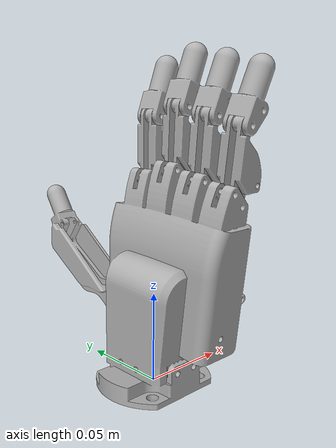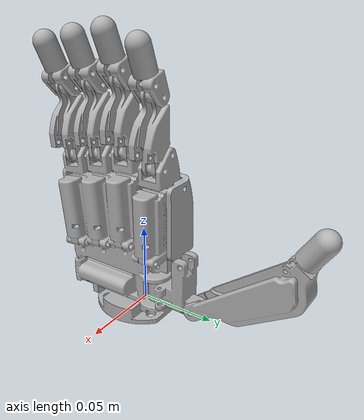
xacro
<?xml version="1.0" ?>
<robot name="cr_hand_urdf" xmlns:xacro="http://www.ros.org/wiki/xacro">

<xacro:include filename="$(find cr_hand_urdf)/urdf/materials.xacro" />
<xacro:include filename="$(find cr_hand_urdf)/urdf/sensors.xacro" />
<xacro:include filename="$(find cr_hand_urdf)/urdf/cr_hand_urdf.gazebo" />
<link name="base_link">
  <inertial>
    <origin xyz="0.01258814690707233 -0.0014435974218675726 0.0503918095551357" rpy="0 0 0"/>
    <mass value="0.25446350917170585"/>
    <inertia ixx="0.000334" iyy="0.000291" izz="0.000157" ixy="2e-06" iyz="-1e-06" ixz="-4.3e-05"/>
  </inertial>
  <visual>
    <origin xyz="0 0 0" rpy="0 0 0"/>
    <geometry>
      <mesh filename="file://$(find cr_hand_urdf)/meshes/base_link.stl" scale="0.001 0.001 0.001"/>
    </geometry>
    <material name="silver"/>
  </visual>
  <collision>
    <origin xyz="0 0 0" rpy="0 0 0"/>
    <geometry>
      <mesh filename="file://$(find cr_hand_urdf)/meshes/base_link.stl" scale="0.001 0.001 0.001"/>
    </geometry>
  </collision>
</link>

<link name="link2_2_1">
  <inertial>
    <origin xyz="0.005969301232532965 -1.1637668159009129e-08 0.014039124761224958" rpy="0 0 0"/>
    <mass value="0.0056132869026133975"/>
    <inertia ixx="1e-06" iyy="1e-06" izz="0.0" ixy="0.0" iyz="0.0" ixz="-0.0"/>
  </inertial>
  <visual>
    <origin xyz="-0.0225 -0.0255 -0.143" rpy="0 0 0"/>
    <geometry>
      <mesh filename="file://$(find cr_hand_urdf)/meshes/link2_2_1.stl" scale="0.001 0.001 0.001"/>
    </geometry>
    <material name="silver"/>
  </visual>
  <collision>
    <origin xyz="-0.0225 -0.0255 -0.143" rpy="0 0 0"/>
    <geometry>
      <mesh filename="file://$(find cr_hand_urdf)/meshes/link2_2_1.stl" scale="0.001 0.001 0.001"/>
    </geometry>
  </collision>
</link>

<link name="link2_1_1">
  <inertial>
    <origin xyz="0.0018671173269007371 -6.394654877072206e-05 0.019160256360538586" rpy="0 0 0"/>
    <mass value="0.007469103826058473"/>
    <inertia ixx="1e-06" iyy="1e-06" izz="0.0" ixy="0.0" iyz="-0.0" ixz="0.0"/>
  </inertial>
  <visual>
    <origin xyz="-0.0225 -0.0255 -0.103" rpy="0 0 0"/>
    <geometry>
      <mesh filename="file://$(find cr_hand_urdf)/meshes/link2_1_1.stl" scale="0.001 0.001 0.001"/>
    </geometry>
    <material name="silver"/>
  </visual>
  <collision>
    <origin xyz="-0.0225 -0.0255 -0.103" rpy="0 0 0"/>
    <geometry>
      <mesh filename="file://$(find cr_hand_urdf)/meshes/link2_1_1.stl" scale="0.001 0.001 0.001"/>
    </geometry>
  </collision>
</link>

<link name="link3_2_1">
  <inertial>
    <origin xyz="0.005969306165589154 -0.0004907419668455119 0.014031072734458222" rpy="0 0 0"/>
    <mass value="0.005613293082823825"/>
    <inertia ixx="1e-06" iyy="1e-06" izz="0.0" ixy="0.0" iyz="0.0" ixz="-0.0"/>
  </inertial>
  <visual>
    <origin xyz="-0.02255 -0.005028 -0.148439" rpy="0 0 0"/>
    <geometry>
      <mesh filename="file://$(find cr_hand_urdf)/meshes/link3_2_1.stl" scale="0.001 0.001 0.001"/>
    </geometry>
    <material name="silver"/>
  </visual>
  <collision>
    <origin xyz="-0.02255 -0.005028 -0.148439" rpy="0 0 0"/>
    <geometry>
      <mesh filename="file://$(find cr_hand_urdf)/meshes/link3_2_1.stl" scale="0.001 0.001 0.001"/>
    </geometry>
  </collision>
</link>

<link name="link3_1_1">
  <inertial>
    <origin xyz="0.0018671173269007267 -0.0007321109517335212 0.019146106955324732" rpy="0 0 0"/>
    <mass value="0.007469103826058467"/>
    <inertia ixx="1e-06" iyy="1e-06" izz="0.0" ixy="0.0" iyz="0.0" ixz="0.0"/>
  </inertial>
  <visual>
    <origin xyz="-0.02255 -0.006423 -0.108464" rpy="0 0 0"/>
    <geometry>
      <mesh filename="file://$(find cr_hand_urdf)/meshes/link3_1_1.stl" scale="0.001 0.001 0.001"/>
    </geometry>
    <material name="silver"/>
  </visual>
  <collision>
    <origin xyz="-0.02255 -0.006423 -0.108464" rpy="0 0 0"/>
    <geometry>
      <mesh filename="file://$(find cr_hand_urdf)/meshes/link3_1_1.stl" scale="0.001 0.001 0.001"/>
    </geometry>
  </collision>
</link>

<link name="link4_2_1">
  <inertial>
    <origin xyz="0.005969308941921617 -0.0009796579832659254 0.014004610375649595" rpy="0 0 0"/>
    <mass value="0.005613296762362794"/>
    <inertia ixx="1e-06" iyy="1e-06" izz="0.0" ixy="0.0" iyz="0.0" ixz="-0.0"/>
  </inertial>
  <visual>
    <origin xyz="-0.0225 0.015441 -0.144258" rpy="0 0 0"/>
    <geometry>
      <mesh filename="file://$(find cr_hand_urdf)/meshes/link4_2_1.stl" scale="0.001 0.001 0.001"/>
    </geometry>
    <material name="silver"/>
  </visual>
  <collision>
    <origin xyz="-0.0225 0.015441 -0.144258" rpy="0 0 0"/>
    <geometry>
      <mesh filename="file://$(find cr_hand_urdf)/meshes/link4_2_1.stl" scale="0.001 0.001 0.001"/>
    </geometry>
  </collision>
</link>

<link name="link4_1_1">
  <inertial>
    <origin xyz="0.0018671173269007371 -0.0013998528857119361 0.019109183243744582" rpy="0 0 0"/>
    <mass value="0.007469103826058476"/>
    <inertia ixx="1e-06" iyy="1e-06" izz="0.0" ixy="-0.0" iyz="0.0" ixz="0.0"/>
  </inertial>
  <visual>
    <origin xyz="-0.0225 0.012651 -0.104355" rpy="0 0 0"/>
    <geometry>
      <mesh filename="file://$(find cr_hand_urdf)/meshes/link4_1_1.stl" scale="0.001 0.001 0.001"/>
    </geometry>
    <material name="silver"/>
  </visual>
  <collision>
    <origin xyz="-0.0225 0.012651 -0.104355" rpy="0 0 0"/>
    <geometry>
      <mesh filename="file://$(find cr_hand_urdf)/meshes/link4_1_1.stl" scale="0.001 0.001 0.001"/>
    </geometry>
  </collision>
</link>

<link name="link5_2_1">
  <inertial>
    <origin xyz="0.00596931588920031 -0.0014679280351763552 0.013962179469490604" rpy="0 0 0"/>
    <mass value="0.005613304223205438"/>
    <inertia ixx="1e-06" iyy="1e-06" izz="0.0" ixy="0.0" iyz="0.0" ixz="-0.0"/>
  </inertial>
  <visual>
    <origin xyz="-0.0225 0.035901 -0.139955" rpy="0 0 0"/>
    <geometry>
      <mesh filename="file://$(find cr_hand_urdf)/meshes/link5_2_1.stl" scale="0.001 0.001 0.001"/>
    </geometry>
    <material name="silver"/>
  </visual>
  <collision>
    <origin xyz="-0.0225 0.035901 -0.139955" rpy="0 0 0"/>
    <geometry>
      <mesh filename="file://$(find cr_hand_urdf)/meshes/link5_2_1.stl" scale="0.001 0.001 0.001"/>
    </geometry>
  </collision>
</link>

<link name="link5_1_1">
  <inertial>
    <origin xyz="0.0018671173269007371 -0.002066831960492427 0.019048663011362793" rpy="0 0 0"/>
    <mass value="0.007469103826058467"/>
    <inertia ixx="1e-06" iyy="1e-06" izz="0.0" ixy="-0.0" iyz="0.0" ixz="0.0"/>
  </inertial>
  <visual>
    <origin xyz="-0.0225 0.031719 -0.100174" rpy="0 0 0"/>
    <geometry>
      <mesh filename="file://$(find cr_hand_urdf)/meshes/link5_1_1.stl" scale="0.001 0.001 0.001"/>
    </geometry>
    <material name="silver"/>
  </visual>
  <collision>
    <origin xyz="-0.0225 0.031719 -0.100174" rpy="0 0 0"/>
    <geometry>
      <mesh filename="file://$(find cr_hand_urdf)/meshes/link5_1_1.stl" scale="0.001 0.001 0.001"/>
    </geometry>
  </collision>
</link>

<link name="link1_3_1">
  <inertial>
    <origin xyz="-1.5645635322841106e-05 0.043404926936212444 0.027519908601354955" rpy="0 0 0"/>
    <mass value="0.020651833448694434"/>
    <inertia ixx="1.4e-05" iyy="7e-06" izz="9e-06" ixy="0.0" iyz="-6e-06" ixz="0.0"/>
  </inertial>
  <visual>
    <origin xyz="-0.0225 -0.0545 -0.025" rpy="0 0 0"/>
    <geometry>
      <mesh filename="file://$(find cr_hand_urdf)/meshes/link1_3_1.stl" scale="0.001 0.001 0.001"/>
    </geometry>
    <material name="silver"/>
  </visual>
  <collision>
    <origin xyz="-0.0225 -0.0545 -0.025" rpy="0 0 0"/>
    <geometry>
      <mesh filename="file://$(find cr_hand_urdf)/meshes/link1_3_1.stl" scale="0.001 0.001 0.001"/>
    </geometry>
  </collision>
</link>

<link name="link1_1_1">
  <inertial>
    <origin xyz="0.00034372338269800587 0.015133533891270378 0.003871141534991799" rpy="0 0 0"/>
    <mass value="0.01038907550298277"/>
    <inertia ixx="1e-06" iyy="1e-06" izz="1e-06" ixy="0.0" iyz="-0.0" ixz="0.0"/>
  </inertial>
  <visual>
    <origin xyz="-0.0225 -0.0255 -0.028" rpy="0 0 0"/>
    <geometry>
      <mesh filename="file://$(find cr_hand_urdf)/meshes/link1_1_1.stl" scale="0.001 0.001 0.001"/>
    </geometry>
    <material name="silver"/>
  </visual>
  <collision>
    <origin xyz="-0.0225 -0.0255 -0.028" rpy="0 0 0"/>
    <geometry>
      <mesh filename="file://$(find cr_hand_urdf)/meshes/link1_1_1.stl" scale="0.001 0.001 0.001"/>
    </geometry>
  </collision>
</link>

<joint name="Revolute 19" type="continuous">
  <origin xyz="0.0 0.0 0.04" rpy="0 0 0"/>
  <parent link="link2_1_1"/>
  <child link="link2_2_1"/>
  <axis xyz="-0.0 1.0 -0.0"/>
</joint>

<joint name="Revolute 20" type="continuous">
  <origin xyz="0.0225 0.0255 0.103" rpy="0 0 0"/>
  <parent link="base_link"/>
  <child link="link2_1_1"/>
  <axis xyz="-0.0 1.0 0.0"/>
</joint>

<joint name="Revolute 21" type="continuous">
  <origin xyz="0.0 -0.001395 0.039975" rpy="0 0 0"/>
  <parent link="link3_1_1"/>
  <child link="link3_2_1"/>
  <axis xyz="-0.0 0.999391 0.034899"/>
</joint>

<joint name="Revolute 22" type="continuous">
  <origin xyz="0.02255 0.006423 0.108464" rpy="0 0 0"/>
  <parent link="base_link"/>
  <child link="link3_1_1"/>
  <axis xyz="-0.0 0.999391 0.034899"/>
</joint>

<joint name="Revolute 23" type="continuous">
  <origin xyz="0.0 -0.00279 0.039903" rpy="0 0 0"/>
  <parent link="link4_1_1"/>
  <child link="link4_2_1"/>
  <axis xyz="-0.0 0.997564 0.069756"/>
</joint>

<joint name="Revolute 24" type="continuous">
  <origin xyz="0.0225 -0.012651 0.104355" rpy="0 0 0"/>
  <parent link="base_link"/>
  <child link="link4_1_1"/>
  <axis xyz="-0.0 0.997564 0.069756"/>
</joint>

<joint name="Revolute 25" type="continuous">
  <origin xyz="0.0 -0.004182 0.039781" rpy="0 0 0"/>
  <parent link="link5_1_1"/>
  <child link="link5_2_1"/>
  <axis xyz="-0.0 0.994522 0.104528"/>
</joint>

<joint name="Revolute 26" type="continuous">
  <origin xyz="0.0225 -0.031719 0.100174" rpy="0 0 0"/>
  <parent link="base_link"/>
  <child link="link5_1_1"/>
  <axis xyz="-0.0 0.994522 0.104528"/>
</joint>

<joint name="Revolute 27" type="continuous">
  <origin xyz="0.0 0.029 -0.003" rpy="0 0 0"/>
  <parent link="link1_1_1"/>
  <child link="link1_3_1"/>
  <axis xyz="1.0 0.0 0.0"/>
</joint>

<joint name="Revolute 28" type="continuous">
  <origin xyz="0.0225 0.0255 0.028" rpy="0 0 0"/>
  <parent link="base_link"/>
  <child link="link1_1_1"/>
  <axis xyz="0.0 -0.0 -1.0"/>
</joint>

</robot>

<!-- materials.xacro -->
<robot name="cr_hand_urdf" xmlns:xacro="http://www.ros.org/wiki/xacro">

  <material name="silver">
    <color rgba="0.700 0.700 0.700 1.000" />
  </material>

</robot>
